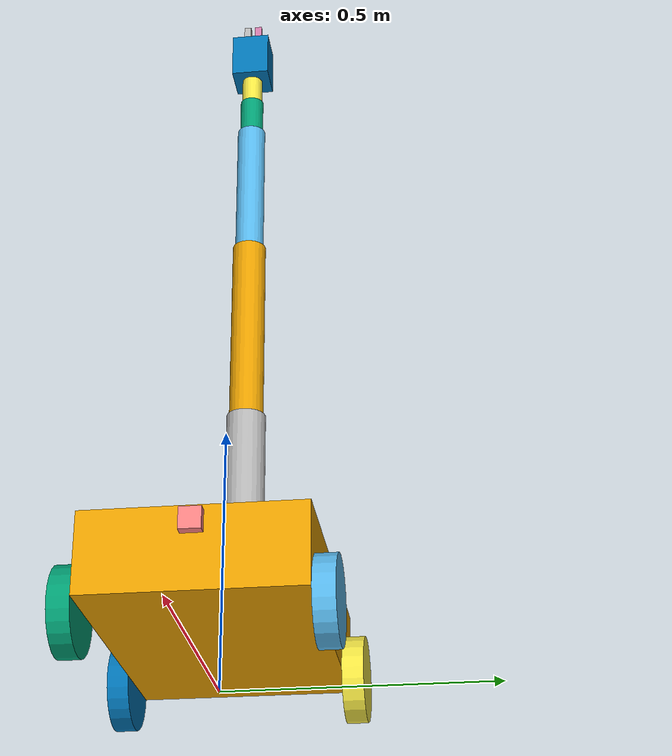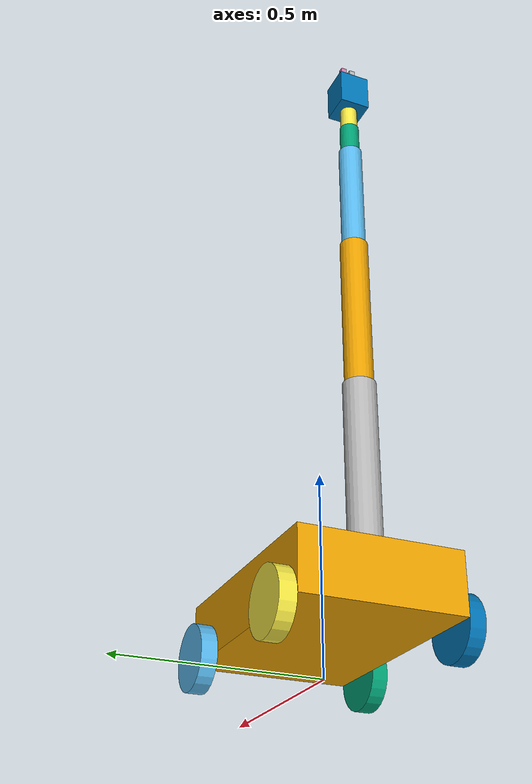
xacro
<?xml version="1.0"?>
<robot xmlns:xacro="http://www.ros.org/wiki/xacro" name="nexus_with_arm">

    <!-- ================= PARAMETERS ================= -->
    <xacro:property name="base_length" value="0.6" />
    <xacro:property name="base_width" value="0.4" />
    <xacro:property name="base_height" value="0.15" />

    <xacro:property name="wheel_radius" value="0.08" />
    <xacro:property name="wheel_width" value="0.04" />

    <!-- math -->
    <xacro:property name="base_z" value="${wheel_radius + base_height/2}" />
    <xacro:property name="wheel_x" value="${base_length/2 - wheel_radius}" />
    <xacro:property name="wheel_y" value="${base_width/2 + wheel_width/2}" />
    <xacro:property name="wheel_z" value="${wheel_radius}" />

    <!-- arm mount -->
    <xacro:property name="arm_mount_x" value="-0.22" />
    <xacro:property name="arm_mount_y" value="0.0" />
    <xacro:property name="arm_mount_z" value="${base_z + base_height/2 + 0.01}" />

    <!-- ================= BASE LINK ================= -->
    <link name="base_link">
        <visual>
            <origin xyz="0 0 ${base_z}" />
            <geometry>
                <box size="${base_length} ${base_width} ${base_height}" />
            </geometry>
        </visual>
        <collision>
            <origin xyz="0 0 ${base_z}" />
            <geometry>
                <box size="${base_length} ${base_width} ${base_height}" />
            </geometry>
        </collision>
        <inertial>
            <origin xyz="0 0 ${base_z}" />
            <mass value="25.0" />
            <inertia
                ixx="${(1/12)*25.0*(base_width*base_width + base_height*base_height)}"
                iyy="${(1/12)*25.0*(base_length*base_length + base_height*base_height)}"
                izz="${(1/12)*25.0*(base_length*base_length + base_width*base_width)}"
                ixy="0" ixz="0" iyz="0" />
        </inertial>
    </link>

    <!-- ================= WHEEL MACRO ================= -->
    <xacro:macro name="wheel" params="name">
        <link name="${name}">
            <visual>
                <origin xyz="0 0 0" rpy="1.5708 0 0" />
                <geometry>
                    <cylinder radius="${wheel_radius}" length="${wheel_width}" />
                </geometry>
            </visual>
            <collision>
                <origin xyz="0 0 0" rpy="1.5708 0 0" />
                <geometry>
                    <cylinder radius="${wheel_radius}" length="${wheel_width}" />
                </geometry>
            </collision>
            <inertial>
                <mass value="1.0" />
                <inertia ixx="0.001" iyy="0.001" izz="0.002" ixy="0" ixz="0" iyz="0" />
            </inertial>
        </link>
    </xacro:macro>

    <xacro:wheel name="wheel_front_left" />
    <xacro:wheel name="wheel_front_right" />
    <xacro:wheel name="wheel_rear_left" />
    <xacro:wheel name="wheel_rear_right" />

    <!-- ================= WHEEL JOINTS ================= -->
    <joint name="left_front_wheel_joint" type="continuous">
        <parent link="base_link" />
        <child link="wheel_front_left" />
        <origin xyz="${ wheel_x} ${ wheel_y} ${wheel_z}" />
        <axis xyz="0 1 0" />
    </joint>

    <joint name="left_rear_wheel_joint" type="continuous">
        <parent link="base_link" />
        <child link="wheel_rear_left" />
        <origin xyz="${-wheel_x} ${ wheel_y} ${wheel_z}" />
        <axis xyz="0 1 0" />
    </joint>

    <joint name="right_front_wheel_joint" type="continuous">
        <parent link="base_link" />
        <child link="wheel_front_right" />
        <origin xyz="${ wheel_x} ${-wheel_y} ${wheel_z}" />
        <axis xyz="0 1 0" />
    </joint>

    <joint name="right_rear_wheel_joint" type="continuous">
        <parent link="base_link" />
        <child link="wheel_rear_right" />
        <origin xyz="${-wheel_x} ${-wheel_y} ${wheel_z}" />
        <axis xyz="0 1 0" />
    </joint>

    <!-- ================= LIDAR ================= -->
    <link name="lidar_link">
        <visual>
            <origin xyz="0 0 0" />
            <geometry>
                <cylinder radius="0.04" length="0.05" />
            </geometry>
            <material name="gray">
                <color rgba="0.5 0.5 0.5 1" />
            </material>
        </visual>

        <collision>
            <origin xyz="0 0 0" />
            <geometry>
                <cylinder radius="0.04" length="0.05" />
            </geometry>
        </collision>

        <inertial>
            <origin xyz="0 0 0" />
            <mass value="0.3" />
            <inertia ixx="0.0005" iyy="0.0005" izz="0.0005"
                ixy="0" ixz="0" iyz="0" />
        </inertial>
    </link>

    <joint name="lidar_joint" type="fixed">
        <parent link="base_link" />
        <child link="lidar_link" />
        <origin xyz="0 0 ${arm_mount_z}" />
    </joint>
    <!-- ================= BASE CAMERA ================= -->
    <link name="base_camera_link">
        <visual>
            <origin xyz="0 0 0" />
            <geometry>
                <box size="0.04 0.04 0.04" />
            </geometry>
            <material name="gray">
                <color rgba="1 0.5 0.5 1" />
            </material>
        </visual>
    </link>

    <joint name="base_camera_joint" type="fixed">
        <parent link="base_link" />
        <child link="base_camera_link" />
        <origin xyz="0.3 0 ${arm_mount_z - 0.04}" />
    </joint>

    <!-- ================= ARM ================= -->

    <joint name="shoulder_joint" type="revolute">
        <parent link="base_link" />
        <child link="shoulder_link" />
        <origin xyz="${arm_mount_x} ${arm_mount_y} ${arm_mount_z}" />
        <axis xyz="0 0 1" />
        <limit lower="-3.14" upper="3.14" effort="300" velocity="1" />
    </joint>

    <link name="shoulder_link">
        <visual>
            <origin xyz="0 0 0.2" />
            <geometry>
                <cylinder length="0.4" radius="0.04" />
            </geometry>
        </visual>
        <collision>
            <origin xyz="0 0 0.2" />
            <geometry>
                <cylinder length="0.4" radius="0.04" />
            </geometry>
        </collision>
        <inertial>
            <origin xyz="0 0 0.2" />
            <mass value="2" />
            <inertia ixx="0.02" iyy="0.02" izz="0.02" ixy="0" ixz="0" iyz="0" />
        </inertial>
    </link>

    <joint name="elbow_joint" type="revolute">
        <parent link="shoulder_link" />
        <child link="elbow_link" />
        <origin xyz="0 0 0.4" />
        <axis xyz="1 0 0" />
        <limit lower="-1.57" upper="1.57" effort="300" velocity="1" />
    </joint>

    <link name="elbow_link">
        <visual>
            <origin xyz="0 0 0.2" />
            <geometry>
                <cylinder length="0.4" radius="0.035" />
            </geometry>
        </visual>
        <collision>
            <origin xyz="0 0 0.2" />
            <geometry>
                <cylinder length="0.4" radius="0.035" />
            </geometry>
        </collision>
        <inertial>
            <origin xyz="0 0 0.2" />
            <mass value="1.5" />
            <inertia ixx="0.015" iyy="0.015" izz="0.015" ixy="0" ixz="0" iyz="0" />
        </inertial>
    </link>

    <joint name="forearm_joint" type="revolute">
        <parent link="elbow_link" />
        <child link="forearm_link" />
        <origin xyz="0 0 0.4" />
        <axis xyz="1 0 0" />
        <limit lower="-1.57" upper="1.57" effort="300" velocity="1" />
    </joint>

    <link name="forearm_link">
        <visual>
            <origin xyz="0 0 0.15" />
            <geometry>
                <cylinder length="0.3" radius="0.03" />
            </geometry>
        </visual>
        <collision>
            <origin xyz="0 0 0.15" />
            <geometry>
                <cylinder length="0.3" radius="0.03" />
            </geometry>
        </collision>
        <inertial>
            <origin xyz="0 0 0.15" />
            <mass value="1" />
            <inertia ixx="0.01" iyy="0.01" izz="0.01" ixy="0" ixz="0" iyz="0" />
        </inertial>
    </link>

    <joint name="wrist_pitch_joint" type="revolute">
        <parent link="forearm_link" />
        <child link="wrist_pitch_link" />
        <origin xyz="0 0 0.3" />
        <axis xyz="1 0 0" />
        <limit lower="-1.57" upper="1.57" effort="100" velocity="1" />
    </joint>

    <link name="wrist_pitch_link">
        <visual>
            <origin xyz="0 0 0.04" />
            <geometry>
                <cylinder length="0.08" radius="0.025" />
            </geometry>
        </visual>
        <collision>
            <origin xyz="0 0 0.04" />
            <geometry>
                <cylinder length="0.08" radius="0.025" />
            </geometry>
        </collision>
        <inertial>
            <origin xyz="0 0 0.04" />
            <mass value="0.4" />
            <inertia ixx="0.002" iyy="0.002" izz="0.002" ixy="0" ixz="0" iyz="0" />
        </inertial>
    </link>

    <joint name="wrist_roll_joint" type="revolute">
        <parent link="wrist_pitch_link" />
        <child link="wrist_roll_link" />
        <origin xyz="0 0 0.08" />
        <axis xyz="0 0 1" />
        <limit lower="-3.14" upper="3.14" effort="50" velocity="2" />
    </joint>

    <link name="wrist_roll_link">
        <visual>
            <origin xyz="0 0 0.03" />
            <geometry>
                <cylinder length="0.06" radius="0.022" />
            </geometry>
        </visual>
        <collision>
            <origin xyz="0 0 0.03" />
            <geometry>
                <cylinder length="0.06" radius="0.022" />
            </geometry>
        </collision>
        <inertial>
            <origin xyz="0 0 0.03" />
            <mass value="0.3" />
            <inertia ixx="0.001" iyy="0.001" izz="0.001" ixy="0" ixz="0" iyz="0" />
        </inertial>
    </link>

    <joint name="gripper_mount_joint" type="fixed">
        <parent link="wrist_roll_link" />
        <child link="gripper_base" />
        <origin xyz="0 0 0.06" />
    </joint>

    <link name="gripper_base">
        <visual>
            <origin xyz="0 0 0.05" />
            <geometry>
                <box size="0.08 0.08 0.1" />
            </geometry>
        </visual>
        <collision>
            <origin xyz="0 0 0.05" />
            <geometry>
                <box size="0.08 0.08 0.1" />
            </geometry>
        </collision>
        <inertial>
            <origin xyz="0 0 0.05" />
            <mass value="0.4" />
            <inertia ixx="0.002" iyy="0.002" izz="0.002" ixy="0" ixz="0" iyz="0" />
        </inertial>
    </link>

    <joint name="camera_joint" type="fixed">
        <parent link="gripper_base" />
        <child link="camera_link" />
        <origin xyz="0 0 0.08" rpy="0 -1.57 0" />
    </joint>

    <link name="camera_link">
        <visual>
            <geometry>
                <box size="0.04 0.04 0.04" />
            </geometry>
        </visual>
    </link>

    <joint name="left_finger_joint" type="prismatic">
        <parent link="gripper_base" />
        <child link="left_finger" />
        <origin xyz="0 0.012 0.05" />
        <axis xyz="0 1 0" />
        <limit lower="0" upper="0.05" effort="300" velocity="0.2" />
    </joint>

    <link name="left_finger">
        <visual>
            <origin xyz="0 0 0.05" />
            <geometry>
                <box size="0.015 0.015 0.1" />
            </geometry>
        </visual>
        <collision>
            <origin xyz="0 0 0.05" />
            <geometry>
                <box size="0.015 0.015 0.1" />
            </geometry>
        </collision>
        <inertial>
            <origin xyz="0 0 0.05" />
            <mass value="0.05" />
            <inertia ixx="0.0002" iyy="0.0002" izz="0.0002" ixy="0" ixz="0" iyz="0" />
        </inertial>
    </link>

    <joint name="right_finger_joint" type="prismatic">
        <parent link="gripper_base" />
        <child link="right_finger" />
        <origin xyz="0 -0.012 0.05" />
        <axis xyz="0 -1 0" />
        <limit lower="0" upper="0.05" effort="300" velocity="0.2" />
    </joint>

    <link name="right_finger">
        <visual>
            <origin xyz="0 0 0.05" />
            <geometry>
                <box size="0.015 0.015 0.1" />
            </geometry>
        </visual>
        <collision>
            <origin xyz="0 0 0.05" />
            <geometry>
                <box size="0.015 0.015 0.1" />
            </geometry>
        </collision>
        <inertial>
            <origin xyz="0 0 0.05" />
            <mass value="0.05" />
            <inertia ixx="0.0002" iyy="0.0002" izz="0.0002" ixy="0" ixz="0" iyz="0" />
        </inertial>
    </link>

    <gazebo reference="lidar_link">
        <sensor name="gpu_lidar" type="gpu_lidar">
            <update_rate>10</update_rate>
            <topic>scan</topic>
            <gz_frame_id>lidar_link</gz_frame_id>
            <frame_id>lidar_link</frame_id>
            <lidar>
                <scan>
                    <horizontal>
                        <samples>180</samples>
                        <resolution>1</resolution>
                        <min_angle>-3.14156</min_angle>
                        <max_angle>3.14156</max_angle>
                    </horizontal>
                </scan>
                <range>
                    <min>0.05</min>
                    <max>10.0</max>
                    <resolution>0.01</resolution>
                </range>
                <noise>
                    <type>gaussian</type>
                    <mean>0.0</mean>
                    <stddev>0.01</stddev>
                </noise>
            </lidar>
            <always_on>1</always_on>
            <visualize>true</visualize>
        </sensor>
    </gazebo>
    <gazebo reference="camera_link">
        <sensor name="camera" type="camera">
            <update_rate>30</update_rate>
            <topic>/arm_camera/image</topic>
            <camera>
                <horizontal_fov>1.396</horizontal_fov>
                <image>
                    <width>640</width>
                    <height>480</height>
                    <format>R8G8B8</format>
                </image>
            </camera>
        </sensor>
    </gazebo>
    <gazebo reference="base_camera_link">
        <sensor name="camera" type="camera">
            <update_rate>30</update_rate>
            <topic>/base_camera/image</topic>
            <camera>
                <horizontal_fov>1.396</horizontal_fov>
                <image>
                    <width>640</width>
                    <height>480</height>
                    <format>R8G8B8</format>
                </image>
            </camera>
        </sensor>
    </gazebo>
    <gazebo>
        <plugin
            filename="gz-sim-sensors-system"
            name="gz::sim::systems::Sensors">
            <render_engine>ogre2</render_engine>
        </plugin>
    </gazebo>
    <!-- ================= GAZEBO DIFF DRIVE ================= -->
    <gazebo>
        <plugin filename="libgz-sim-diff-drive-system.so" name="gz::sim::systems::DiffDrive">
            <left_joint>left_front_wheel_joint</left_joint>
            <left_joint>left_rear_wheel_joint</left_joint>
            <right_joint>right_front_wheel_joint</right_joint>
            <right_joint>right_rear_wheel_joint</right_joint>
            <wheel_separation>${base_width - wheel_width}</wheel_separation>
            <wheel_radius>${wheel_radius}</wheel_radius>
            <skid_steer>true</skid_steer>
            <topic>/cmd_vel</topic>
            <odom_topic>/odom</odom_topic>
            <frame_id>odom</frame_id>
            <tf_topic>/tf</tf_topic>
            <child_frame_id>base_link</child_frame_id>
            <odom_publish_frequency>30</odom_publish_frequency>
        </plugin>
        <plugin filename="gz-sim-joint-state-publisher-system"
            name="gz::sim::systems::JointStatePublisher">
            <topic>joint_states</topic>
            <joint_name>left_front_wheel_joint</joint_name>
            <joint_name>right_front_wheel_joint</joint_name>
            <joint_name>left_rear_wheel_joint</joint_name>
            <joint_name>right_rear_wheel_joint</joint_name>
        </plugin>
    </gazebo>
    <!-- ================= ROS2 CONTROL ================= -->
    <ros2_control name="mobile_manipulator_arm" type="system">
        <hardware>
            <plugin>gz_ros2_control/GazeboSimSystem</plugin>
        </hardware>

        <joint name="shoulder_joint">
            <command_interface name="position" />
            <state_interface name="position" />
            <state_interface name="velocity" />
        </joint>

        <joint name="elbow_joint">
            <command_interface name="position" />
            <state_interface name="position" />
            <state_interface name="velocity" />
        </joint>

        <joint name="forearm_joint">
            <command_interface name="position" />
            <state_interface name="position" />
            <state_interface name="velocity" />
        </joint>

        <joint name="wrist_pitch_joint">
            <command_interface name="position" />
            <state_interface name="position" />
            <state_interface name="velocity" />
        </joint>

        <joint name="wrist_roll_joint">
            <command_interface name="position" />
            <state_interface name="position" />
            <state_interface name="velocity" />
        </joint>

        <joint name="left_finger_joint">
            <command_interface name="position" />
            <state_interface name="position" />
            <state_interface name="velocity" />
        </joint>

        <joint name="right_finger_joint">
            <command_interface name="position" />
            <state_interface name="position" />
            <state_interface name="velocity" />
        </joint>
    </ros2_control>
    <!-- ================= GAZEBO ROS2 CONTROL PLUGIN ================= -->
    <gazebo>
        <plugin filename="libgz_ros2_control-system.so"
            name="gz_ros2_control::GazeboSimROS2ControlPlugin">
            <parameters>
                /home/madhu/ros2_nexus_fleet_ws/install/fleet_description/share/fleet_description/config/controllers.yaml
            </parameters>
        </plugin>
    </gazebo>

</robot>
